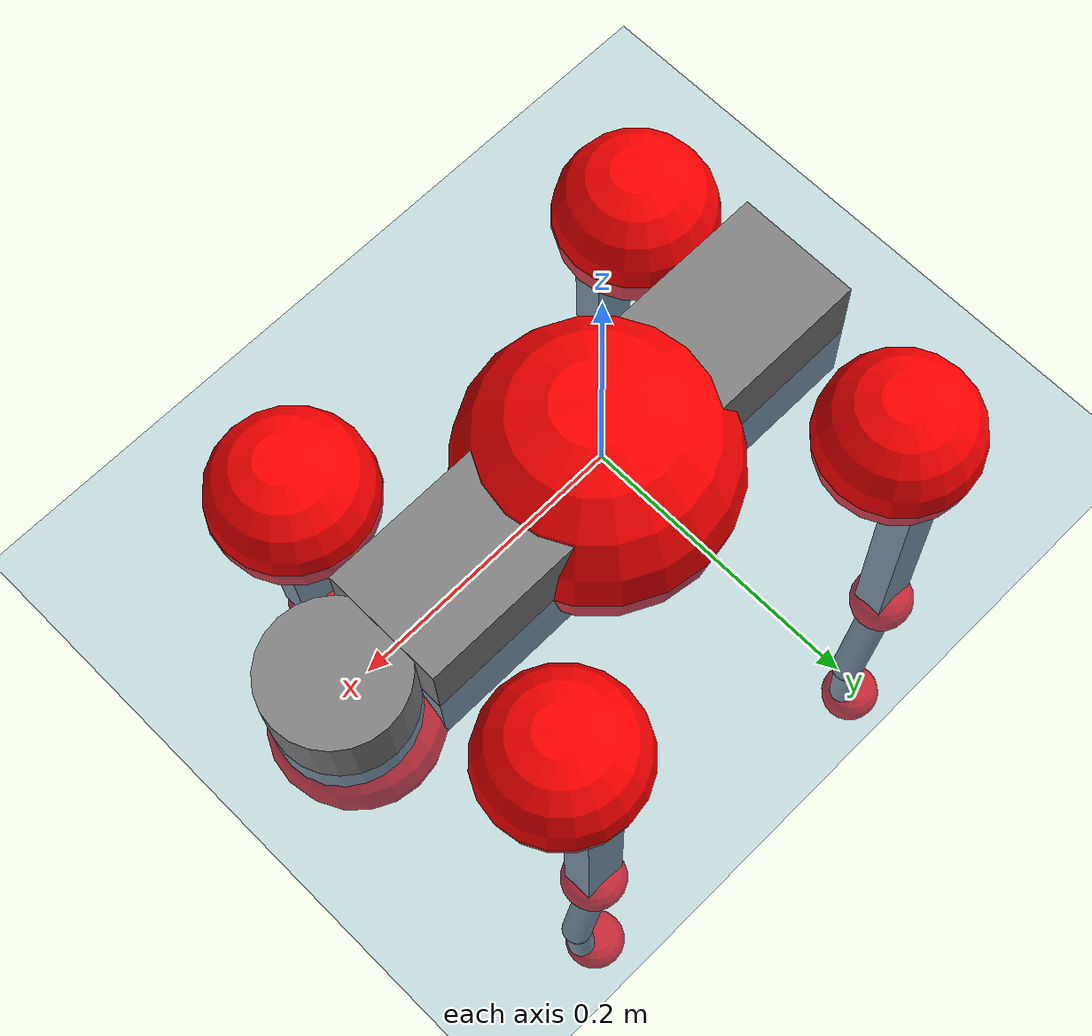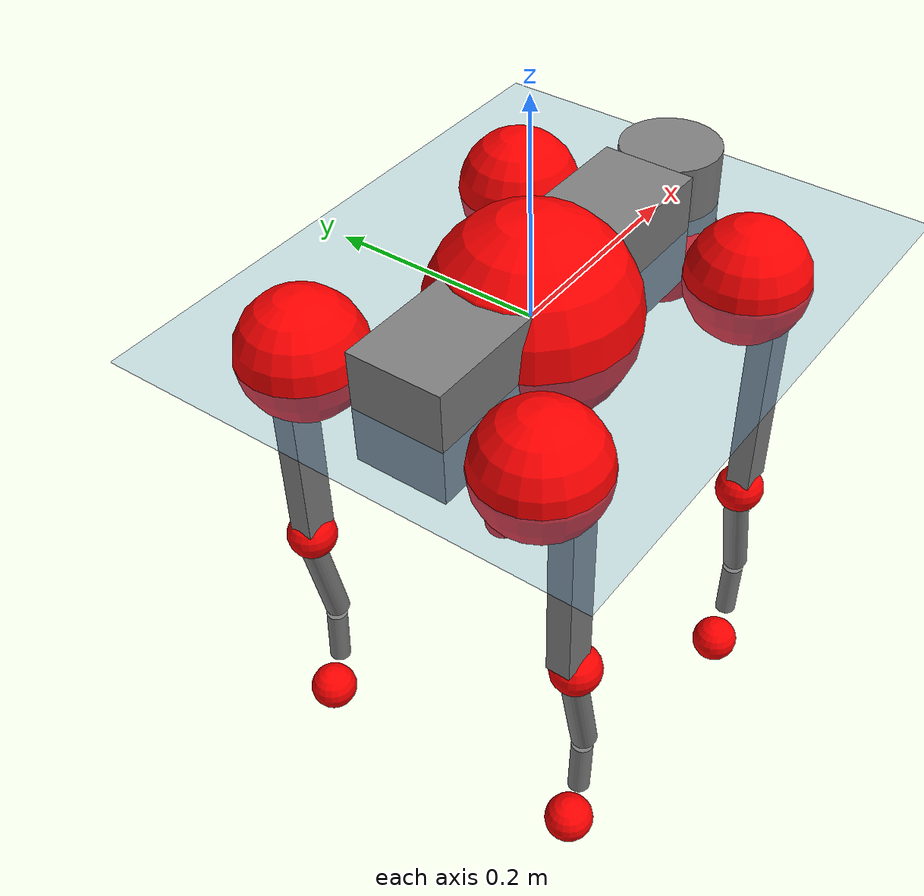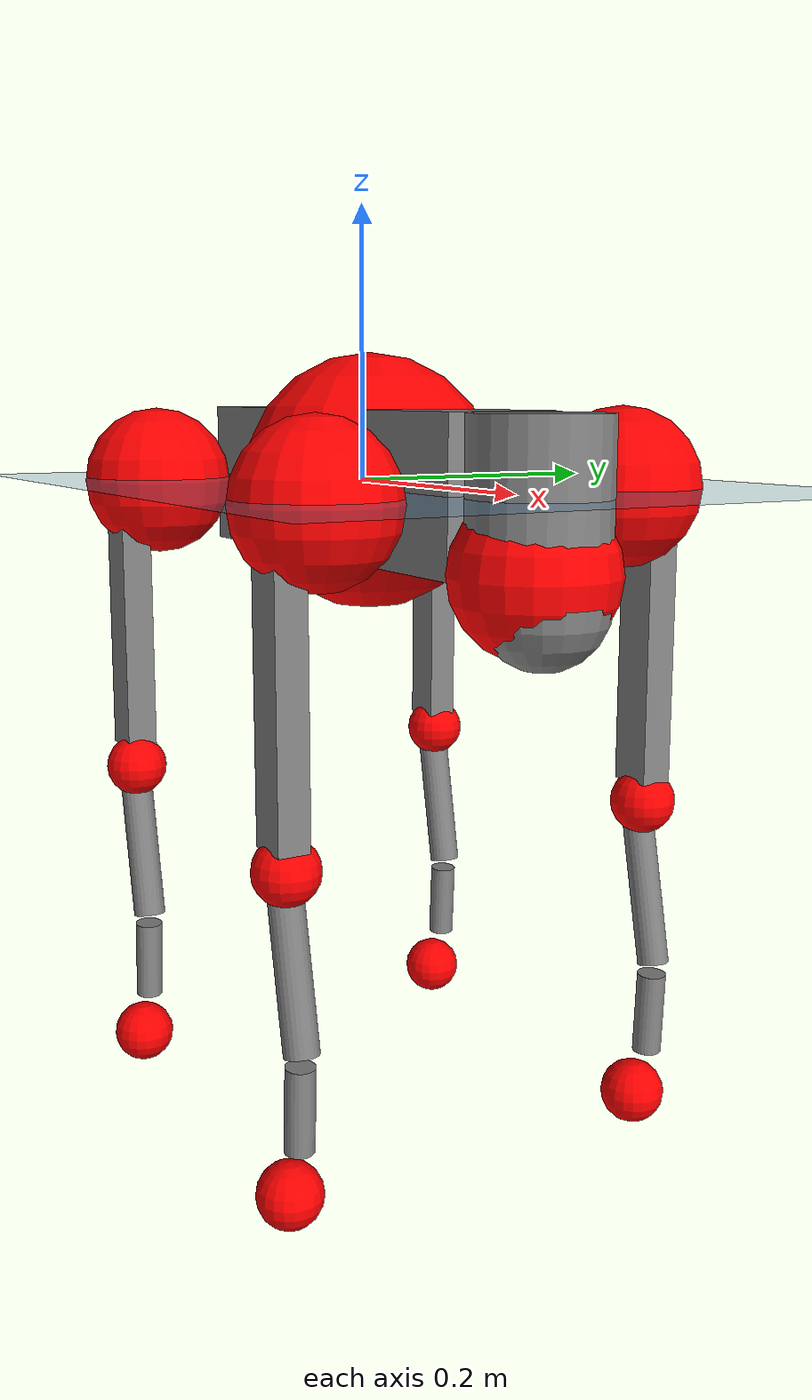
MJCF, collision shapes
<mujoco model="go2">
  <compiler angle="radian" assetdir="assets" balanceinertia="true" inertiafromgeom="false"/>

  <option timestep="0.005" density="1.2" viscosity="2e-05"/>

  <size nkey="1"/>

  <visual>
    <quality shadowsize="8192"/>
    <map shadowclip="0.5"/>
  </visual>

  <default>
    <default class="/">
      <geom contype="0" conaffinity="0" group="1" solref="-1000 -80"/>
      <site size="0.01 0.005 0.005" group="5"/>
      <general forcelimited="true" biastype="affine" gainprm="20" biasprm="0 -20 -0.5"/>
      <default class="go2">
        <joint armature="0.01" damping="0.01" frictionloss="0.2"/>
        <geom condim="1" margin="0.001"/>
        <default class="visual">
          <geom type="mesh" group="2"/>
        </default>
        <default class="collision">
          <geom group="3"/>
          <default class="foot">
            <geom size="0.022 0 0" condim="6" priority="1" friction="0.8 0.02 0.01" solimp="0.015 1 0.022"/>
          </default>
        </default>
        <default class="reward_collision_sphere">
          <geom group="5" rgba="1 0 0 1"/>
        </default>
      </default>
    </default>
  </default>

  <asset>
    <texture type="skybox" colorspace="auto" name="//unnamed_texture_0" builtin="gradient" rgb1="0.95 0.95 0.95" rgb2="0.95 0.95 0.95" width="100" height="600"/>
    <texture type="2d" colorspace="auto" name="texplane" builtin="checker" rgb1="0.345 0.575 0.748" rgb2="0.345 0.575 0.748" markrgb="1 1 1" width="512" height="512"/>
    <material name="MatPlane" class="/" texture="texplane" texuniform="true" texrepeat="2 2" specular="0.9"/>
    <material name="metal" class="/" rgba="0.9 0.95 0.95 1"/>
    <material name="black" class="/" rgba="0 0 0 1"/>
    <material name="white" class="/"/>
    <material name="gray" class="/" rgba="0.671705 0.692426 0.77427 1"/>
    <mesh name="base_0" class="/" file="base_0.obj"/>
    <mesh name="base_1" class="/" file="base_1.obj"/>
    <mesh name="base_2" class="/" file="base_2.obj"/>
    <mesh name="base_3" class="/" file="base_3.obj"/>
    <mesh name="base_4" class="/" file="base_4.obj"/>
    <mesh name="hip_0" class="/" file="hip_0.obj"/>
    <mesh name="hip_1" class="/" file="hip_1.obj"/>
    <mesh name="thigh_0" class="/" file="thigh_0.obj"/>
    <mesh name="thigh_1" class="/" file="thigh_1.obj"/>
    <mesh name="thigh_mirror_0" class="/" file="thigh_mirror_0.obj"/>
    <mesh name="thigh_mirror_1" class="/" file="thigh_mirror_1.obj"/>
    <mesh name="calf_0" class="/" file="calf_0.obj"/>
    <mesh name="calf_1" class="/" file="calf_1.obj"/>
    <mesh name="calf_mirror_0" class="/" file="calf_mirror_0.obj"/>
    <mesh name="calf_mirror_1" class="/" file="calf_mirror_1.obj"/>
    <mesh name="foot" class="/" file="foot.obj"/>
  </asset>

  <worldbody>
    <geom name="floor" class="/" size="100 100 0.125" type="plane" group="0" material="MatPlane"/>
    <light name="toplight_shadow" class="/" pos="0 0 5" dir="0.0990148 0.0990148 -0.990148" type="directional" ambient="0.04 0.04 0.04" diffuse="0.55 0.55 0.55" specular="0.12 0.12 0.12"/>
    <light name="toplight_fill" class="/" pos="0 0 5" dir="0.0990148 0.0990148 -0.990148" type="directional" castshadow="false" ambient="0.04 0.04 0.04" diffuse="0.3 0.3 0.3" specular="0.08 0.08 0.08"/>
    <body name="trunk" childclass="go2" pos="0.0064013 0.00248234 -0.000761922" quat="0.999998 0.000960465 0.00164327 -0.000453253">
      <inertial pos="0.0230764 -0.00148985 -0.00652218" quat="-0.000785888 0.715871 0.000612451 0.698231" mass="5.96996" diaginertia="0.0261239 0.10273 0.0336567"/>
      <joint name="//unnamed_joint_0" type="free" armature="0" damping="0" frictionloss="0"/>
      <geom name="//unnamed_geom_1" class="visual" material="black" mesh="base_0"/>
      <geom name="//unnamed_geom_2" class="visual" material="black" mesh="base_1"/>
      <geom name="//unnamed_geom_3" class="visual" material="black" mesh="base_2"/>
      <geom name="//unnamed_geom_4" class="visual" material="white" mesh="base_3"/>
      <geom name="//unnamed_geom_5" class="visual" material="gray" mesh="base_4"/>
      <geom name="trunk_1" class="collision" size="0.178475 0.0443578 0.0540833" type="box"/>
      <geom name="trunk_2" class="collision" size="0.0474415 0.0426974" pos="0.216247 0 0.0108156" type="cylinder"/>
      <geom name="trunk_3" class="collision" size="0.044595" pos="0.222317 0 -0.0648933"/>
      <geom name="//unnamed_geom_9" class="reward_collision_sphere" size="0.0948831"/>
      <geom name="//unnamed_geom_10" class="reward_collision_sphere" size="0.0569298" pos="0.212453 0 -0.04867"/>
      <site name="imu" pos="-0.0144905 0.00507558 0.037036" size="0.00948831"/>
      <camera name="track" pos="0 -2.01235 0" quat="0.707107 0.707107 0 0" mode="trackcom"/>
      <camera name="ego_camera" pos="0.236733 0 0.04867" quat="-0.5 -0.5 0.5 0.5"/>
      <body name="FL_hip" pos="0.148498 0.0484498 0.000306366" quat="0.999995 -0.000481548 -0.00253171 -0.00187724">
        <inertial pos="0.00318035 0.00257731 0.000521477" quat="0.498827 0.495503 0.511053 0.494443" mass="0.528897" diaginertia="0.000202987 0.00061938 0.000661025"/>
        <joint name="FL_hip_joint" pos="0 0 0" axis="0.999983 0.00176369 -0.00564641" stiffness="0.00130059" range="-1.08169 1.14127" armature="0.00792134" damping="0.0195419" frictionloss="0.194292"/>
        <geom name="//unnamed_geom_11" class="visual" material="metal" mesh="hip_0"/>
        <geom name="//unnamed_geom_12" class="visual" material="gray" mesh="hip_1"/>
        <geom name="//unnamed_geom_13" class="collision" size="0.0436462 0.0189766" pos="0 0.0804941 0" quat="0.707107 0.707107 0 0" type="cylinder"/>
        <geom name="//unnamed_geom_14" class="reward_collision_sphere" size="0.0569298" pos="0 0.0704323 0"/>
        <body name="FL_thigh" pos="0.000803677 0.0971746 0.000860995" quat="1 -0.000473647 -0.000293838 0.000335747">
          <inertial pos="-0.00917006 -0.0204094 -0.0405617" quat="0.833142 0.0779333 -0.0215998 0.547114" mass="0.957358" diaginertia="0.00145299 0.00613677 0.00128255"/>
          <joint name="FL_thigh_joint" pos="0 0 0" axis="-0.00301828 0.999981 -0.0054262" range="-1.49042 3.42387" armature="0.00788042" damping="0.038507" frictionloss="0.187267"/>
          <geom name="//unnamed_geom_15" class="visual" material="metal" mesh="thigh_0"/>
          <geom name="//unnamed_geom_16" class="visual" material="gray" mesh="thigh_1"/>
          <geom name="//unnamed_geom_17" class="collision" size="0.10105 0.0116232 0.0161301" pos="0 0 -0.115186" quat="0.707107 0 0.707107 0" type="box"/>
          <body name="FL_calf" pos="0.000574427 0.000917184 -0.232434" quat="1 -0.000225262 -0.000456516 0.000755581">
            <inertial pos="0.00351999 -0.00117536 -0.149915" quat="0.716323 0.0244696 -0.00910182 0.69728" mass="0.211441" diaginertia="0.000370133 0.0015089 8.10183e-05"/>
            <joint name="FL_calf_joint" pos="0 0 0" axis="-0.00246829 0.999994 -0.00256539" range="-2.77138 -0.751291" armature="0.00989988" damping="0.00432025" frictionloss="0.16846"/>
            <geom name="//unnamed_geom_18" class="visual" material="gray" mesh="calf_0"/>
            <geom name="//unnamed_geom_19" class="visual" material="black" mesh="calf_1"/>
            <geom name="FL_calf0" class="collision" size="0.011386 0.0569298" pos="0.00607008 0 -0.0648933" quat="0.994493 0 -0.104807 0" type="cylinder"/>
            <geom name="//unnamed_geom_21" class="collision" size="0.0104371 0.030837" pos="0.0151752 0 -0.16007" quat="0.999688 0 0.0249974 0" type="cylinder"/>
            <geom name="//unnamed_geom_22" class="visual" pos="0 0 -0.230371" quat="1 0 0 0" material="black" mesh="foot"/>
            <geom name="FL_foot" class="foot" size="0.0232941" pos="-0.00151752 0 -0.230371"/>
            <geom name="//unnamed_geom_24" class="reward_collision_sphere" size="0.0237208"/>
            <geom name="//unnamed_geom_25" class="reward_collision_sphere" size="0.0237208" pos="-0.00151752 0 -0.230371"/>
            <site name="FL_foot" class="foot" pos="-0.00151752 0 -0.230371" size="0.00948831"/>
          </body>
        </body>
      </body>
      <body name="FR_hip" pos="0.1474 -0.0516475 -0.00294439" quat="1 0.000176792 3.329e-05 -5.39389e-06">
        <inertial pos="-0.00780544 -6.88821e-05 -0.000395279" quat="0.502945 0.506785 0.498408 0.491736" mass="0.502851" diaginertia="0.000209513 0.000580486 0.000703499"/>
        <joint name="FR_hip_joint" pos="0 0 0" axis="0.999982 -0.00466022 -0.00390058" stiffness="0.0331192" range="-1.06828 1.04576" armature="0.0126368" damping="0" frictionloss="0.127209"/>
        <geom name="//unnamed_geom_26" class="visual" pos="0 -6.56673e-10 -2.8166e-08" quat="4.63268e-05 1 0 0" material="metal" mesh="hip_0"/>
        <geom name="//unnamed_geom_27" class="visual" pos="0 -1.06454e-09 6.96654e-08" quat="4.63268e-05 1 0 0" material="gray" mesh="hip_1"/>
        <geom name="//unnamed_geom_28" class="collision" size="0.0436462 0.0189766" pos="0 -0.0804941 0" quat="0.707107 0.707107 0 0" type="cylinder"/>
        <geom name="//unnamed_geom_29" class="reward_collision_sphere" size="0.0569298" pos="0 -0.0704323 0"/>
        <body name="FR_thigh" pos="0.000982131 -0.0970902 -0.00540308" quat="0.999996 0.00215518 0.00128097 -0.00153718">
          <inertial pos="-4.03182e-05 0.0295447 -0.0370081" quat="0.547495 -0.0182948 0.0751135 0.83323" mass="1.06149" diaginertia="0.00147581 0.0059227 0.00134514"/>
          <joint name="FR_thigh_joint" pos="0 0 0" axis="-0.00409666 -0.999937 -0.0104462" range="-3.52176 1.55143" armature="0.00927911" damping="0" frictionloss="0.193896"/>
          <geom name="//unnamed_geom_30" class="visual" material="metal" mesh="thigh_mirror_0"/>
          <geom name="//unnamed_geom_31" class="visual" material="gray" mesh="thigh_mirror_1"/>
          <geom name="//unnamed_geom_32" class="collision" size="0.10105 0.0116232 0.0161301" pos="0 0 -0.115186" quat="0.707107 0 0.707107 0" type="box"/>
          <body name="FR_calf" pos="-0.00188576 0.0026922 -0.231708" quat="1 8.2519e-05 6.19427e-05 -8.87866e-06">
            <inertial pos="0.00420302 0.00154278 -0.154813" quat="0.698512 -0.0103144 0.00827904 0.715476" mass="0.199971" diaginertia="0.000335401 0.00148127 7.59298e-05"/>
            <joint name="FR_calf_joint" pos="0 0 0" axis="-0.00329087 -0.999755 0.0219016" stiffness="0.00354853" range="0.82271 2.68864" armature="0.010346" damping="0.0022315" frictionloss="0.207596"/>
            <geom name="//unnamed_geom_33" class="visual" material="gray" mesh="calf_mirror_0"/>
            <geom name="//unnamed_geom_34" class="visual" material="black" mesh="calf_mirror_1"/>
            <geom name="FR_calf0" class="collision" size="0.0123348 0.0569298" pos="0.00758761 0 -0.0648933" quat="0.995004 0 -0.0998334 0" type="cylinder"/>
            <geom name="//unnamed_geom_36" class="collision" size="0.0104371 0.030837" pos="0.0151752 0 -0.16007" quat="0.999688 0 0.0249974 0" type="cylinder"/>
            <geom name="//unnamed_geom_37" class="visual" pos="0 0 -0.230371" quat="1 0 0 0" material="black" mesh="foot"/>
            <geom name="FR_foot" class="foot" size="0.0203405" pos="-0.00151752 0 -0.230371"/>
            <geom name="//unnamed_geom_39" class="reward_collision_sphere" size="0.0237208"/>
            <geom name="//unnamed_geom_40" class="reward_collision_sphere" size="0.0237208" pos="-0.00151752 0 -0.230371"/>
            <site name="FR_foot" class="foot" pos="-0.00151752 0 -0.230371" size="0.00948831"/>
          </body>
        </body>
      </body>
      <body name="RL_hip" pos="-0.149521 0.0497362 -0.000950238" quat="0.999992 -6.84052e-05 0.00121934 -0.00391034">
        <inertial pos="-0.00215216 0.000385831 0.00214996" quat="0.504858 0.499688 0.496567 0.49885" mass="0.605144" diaginertia="0.000227515 0.000603481 0.000706923"/>
        <joint name="RL_hip_joint" pos="0 0 0" axis="-0.999967 -0.00801829 0.00147278" range="-1.09439 1.08538" armature="0.00957459" damping="0.00331546" frictionloss="0.197611"/>
        <geom name="//unnamed_geom_41" class="visual" pos="2.81205e-09 0 5.51227e-07" quat="4.63268e-05 0 1 0" material="metal" mesh="hip_0"/>
        <geom name="//unnamed_geom_42" class="visual" pos="4.55867e-09 0 4.8886e-07" quat="4.63268e-05 0 1 0" material="gray" mesh="hip_1"/>
        <geom name="//unnamed_geom_43" class="collision" size="0.0436462 0.0189766" pos="0 0.0804941 0" quat="0.707107 0.707107 0 0" type="cylinder"/>
        <geom name="//unnamed_geom_44" class="reward_collision_sphere" size="0.0569298" pos="0 0.0704323 0"/>
        <body name="RL_thigh" pos="0.00593186 0.0965668 -0.00273878" quat="0.999995 0.00167072 0.00141095 0.00208579">
          <inertial pos="-0.00347898 -0.0243899 -0.0376869" quat="0.827009 0.105981 -0.00842537 0.552044" mass="1.03415" diaginertia="0.00152322 0.00627349 0.00131774"/>
          <joint name="RL_thigh_joint" pos="0 0 0" axis="-0.00673011 0.999977 -0.00078733" stiffness="0.0153691" range="-0.563872 4.48956" armature="0.0103752" damping="0.039125" frictionloss="0.179133"/>
          <geom name="//unnamed_geom_45" class="visual" material="metal" mesh="thigh_0"/>
          <geom name="//unnamed_geom_46" class="visual" material="gray" mesh="thigh_1"/>
          <geom name="//unnamed_geom_47" class="collision" size="0.10105 0.0116232 0.0161301" pos="0 0 -0.115186" quat="0.707107 0 0.707107 0" type="box"/>
          <body name="RL_calf" pos="-7.55328e-05 0.00229885 -0.230136" quat="1 4.20964e-05 6.26858e-05 5.47454e-05">
            <inertial pos="0.00439195 -0.000668305 -0.154019" quat="0.708906 -0.00057165 -0.00601917 0.705277" mass="0.204263" diaginertia="0.00037616 0.00152881 7.68705e-05"/>
            <joint name="RL_calf_joint" pos="0 0 0" axis="-0.0067127 0.999914 0.0112649" range="-2.7609 -0.839411" armature="0.00957273" damping="0.0352242" frictionloss="0.181321"/>
            <geom name="//unnamed_geom_48" class="visual" material="gray" mesh="calf_0"/>
            <geom name="//unnamed_geom_49" class="visual" material="black" mesh="calf_1"/>
            <geom name="RL_calf0" class="collision" size="0.0123348 0.0569298" pos="0.00758761 0 -0.0648933" quat="0.995004 0 -0.0998334 0" type="cylinder"/>
            <geom name="//unnamed_geom_51" class="collision" size="0.0104371 0.030837" pos="0.0151752 0 -0.16007" quat="0.999688 0 0.0249974 0" type="cylinder"/>
            <geom name="//unnamed_geom_52" class="visual" pos="0 0 -0.230371" quat="1 0 0 0" material="black" mesh="foot"/>
            <geom name="RL_foot" class="foot" size="0.0189287" pos="-0.00151752 0 -0.230371"/>
            <geom name="//unnamed_geom_54" class="reward_collision_sphere" size="0.0237208"/>
            <geom name="//unnamed_geom_55" class="reward_collision_sphere" size="0.0237208" pos="-0.00151752 0 -0.230371"/>
            <site name="RL_foot" class="foot" pos="-0.00151752 0 -0.230371" size="0.00948831"/>
          </body>
        </body>
      </body>
      <body name="RR_hip" pos="-0.14698 -0.0403439 -0.0032765" quat="0.999999 8.16378e-05 -0.000286899 -0.00113632">
        <inertial pos="0.00480962 -0.00572747 -0.000526297" quat="0.495058 0.47853 0.517444 0.508114" mass="0.574932" diaginertia="0.000217443 0.00059682 0.000698588"/>
        <joint name="RR_hip_joint" pos="0 0 0" axis="-0.999908 -0.00603841 0.0121474" range="-0.998593 1.03141" armature="0.0062551" damping="0" frictionloss="0.234962"/>
        <geom name="//unnamed_geom_56" class="visual" pos="-2.80349e-09 -6.56673e-10 5.79393e-07" quat="2.14617e-09 4.63268e-05 4.63268e-05 -1" material="metal" mesh="hip_0"/>
        <geom name="//unnamed_geom_57" class="visual" pos="-4.57986e-09 -1.06454e-09 4.19195e-07" quat="2.14617e-09 4.63268e-05 4.63268e-05 -1" material="gray" mesh="hip_1"/>
        <geom name="//unnamed_geom_58" class="collision" size="0.0436462 0.0189766" pos="0 -0.0804941 0" quat="0.707107 0.707107 0 0" type="cylinder"/>
        <geom name="//unnamed_geom_59" class="reward_collision_sphere" size="0.0569298" pos="0 -0.0704323 0"/>
        <body name="RR_thigh" pos="0.00340849 -0.0975639 0.00448031" quat="1 -0.000205079 5.81905e-05 -5.26691e-05">
          <inertial pos="-0.00240067 0.0226854 -0.0340082" quat="0.550162 -0.0211252 0.0841085 0.830543" mass="0.974088" diaginertia="0.00146917 0.00597409 0.0013723"/>
          <joint name="RR_thigh_joint" pos="0 0 0" axis="-0.0330217 -0.999325 0.0160881" stiffness="0.00999748" range="-4.4287 0.495059" armature="0.00911003" damping="0.00236834" frictionloss="0.172519"/>
          <geom name="//unnamed_geom_60" class="visual" material="metal" mesh="thigh_mirror_0"/>
          <geom name="//unnamed_geom_61" class="visual" material="gray" mesh="thigh_mirror_1"/>
          <geom name="//unnamed_geom_62" class="collision" size="0.10105 0.0116232 0.0161301" pos="0 0 -0.115186" quat="0.707107 0 0.707107 0" type="box"/>
          <body name="RR_calf" pos="0.00828652 -0.00252559 -0.232744" quat="0.999999 3.85605e-05 0.00043142 0.00105012">
            <inertial pos="-0.00291536 0.0015623 -0.153784" quat="0.705349 -0.00358677 -0.00111866 0.70885" mass="0.203263" diaginertia="0.000402255 0.00169396 8.3057e-05"/>
            <joint name="RR_calf_joint" pos="0 0 0" axis="-0.00649821 -0.99997 -0.0041903" range="0.782456 2.56376" armature="0.0113048" damping="0.0209817" frictionloss="0.205875"/>
            <geom name="//unnamed_geom_63" class="visual" material="gray" mesh="calf_mirror_0"/>
            <geom name="//unnamed_geom_64" class="visual" material="black" mesh="calf_mirror_1"/>
            <geom name="RR_calf0" class="collision" size="0.0123348 0.0569298" pos="0.00758761 0 -0.0648933" quat="0.995004 0 -0.0998334 0" type="cylinder"/>
            <geom name="//unnamed_geom_66" class="collision" size="0.0104371 0.030837" pos="0.0151752 0 -0.16007" quat="0.999688 0 0.0249974 0" type="cylinder"/>
            <geom name="//unnamed_geom_67" class="visual" pos="0 0 -0.230371" quat="1 0 0 0" material="black" mesh="foot"/>
            <geom name="RR_foot" class="foot" size="0.0180404" pos="-0.00151752 0 -0.230371"/>
            <geom name="//unnamed_geom_69" class="reward_collision_sphere" size="0.0237208"/>
            <geom name="//unnamed_geom_70" class="reward_collision_sphere" size="0.0237208" pos="-0.00151752 0 -0.230371"/>
            <site name="RR_foot" class="foot" pos="-0.00151752 0 -0.230371" size="0.00948831"/>
          </body>
        </body>
      </body>
    </body>
  </worldbody>

  <contact>
    <pair class="/" geom1="floor" geom2="FL_foot" name="//unnamed_contact_0"/>
    <pair class="/" geom1="floor" geom2="FR_foot" name="//unnamed_contact_1"/>
    <pair class="/" geom1="floor" geom2="RL_foot" name="//unnamed_contact_2"/>
    <pair class="/" geom1="floor" geom2="RR_foot" name="//unnamed_contact_3"/>
  </contact>

  <actuator>
    <general name="FL_hip" class="/" joint="FL_hip_joint" forcerange="-20.8589 20.8589" gainprm="19.1254" biasprm="0 -19.1254 -0.471969"/>
    <general name="FL_thigh" class="/" joint="FL_thigh_joint" forcerange="-22.9475 22.9475" gainprm="19.1254" biasprm="0 -19.1254 -0.471969"/>
    <general name="FL_calf" class="/" joint="FL_calf_joint" forcerange="-41.7026 41.7026" gainprm="19.1254" biasprm="0 -19.1254 -0.471969"/>
    <general name="FR_hip" class="/" joint="FR_hip_joint" forcerange="-16.2374 16.2374" gainprm="19.1254" biasprm="0 -19.1254 -0.471969"/>
    <general name="FR_thigh" class="/" joint="FR_thigh_joint" forcerange="-23.1019 23.1019" gainprm="19.1254" biasprm="0 -19.1254 -0.471969"/>
    <general name="FR_calf" class="/" joint="FR_calf_joint" forcerange="-48.0175 48.0175" gainprm="19.1254" biasprm="0 -19.1254 -0.471969"/>
    <general name="RL_hip" class="/" joint="RL_hip_joint" forcerange="-20.7591 20.7591" gainprm="19.1254" biasprm="0 -19.1254 -0.471969"/>
    <general name="RL_thigh" class="/" joint="RL_thigh_joint" forcerange="-20.9197 20.9197" gainprm="19.1254" biasprm="0 -19.1254 -0.471969"/>
    <general name="RL_calf" class="/" joint="RL_calf_joint" forcerange="-47.54 47.54" gainprm="19.1254" biasprm="0 -19.1254 -0.471969"/>
    <general name="RR_hip" class="/" joint="RR_hip_joint" forcerange="-24.4513 24.4513" gainprm="19.1254" biasprm="0 -19.1254 -0.471969"/>
    <general name="RR_thigh" class="/" joint="RR_thigh_joint" forcerange="-21.2986 21.2986" gainprm="19.1254" biasprm="0 -19.1254 -0.471969"/>
    <general name="RR_calf" class="/" joint="RR_calf_joint" forcerange="-34.1888 34.1888" gainprm="19.1254" biasprm="0 -19.1254 -0.471969"/>
  </actuator>

  <sensor>
    <gyro site="imu" name="imu_angular_velocity"/>
    <velocimeter site="imu" name="imu_linear_velocity"/>
    <framelinvel objtype="site" objname="FL_foot" name="FL_foot_global_linear_velocity"/>
    <framelinvel objtype="site" objname="FR_foot" name="FR_foot_global_linear_velocity"/>
    <framelinvel objtype="site" objname="RL_foot" name="RL_foot_global_linear_velocity"/>
    <framelinvel objtype="site" objname="RR_foot" name="RR_foot_global_linear_velocity"/>
  </sensor>

  <keyframe>
    <key name="home" qpos="0 0 0.325 1 0 0 0 0.1 0.8 -1.5 -0.1 -0.8 1.5 -0.1 0.8 -1.5 0.1 -0.8 1.5"/>
  </keyframe>
</mujoco>
